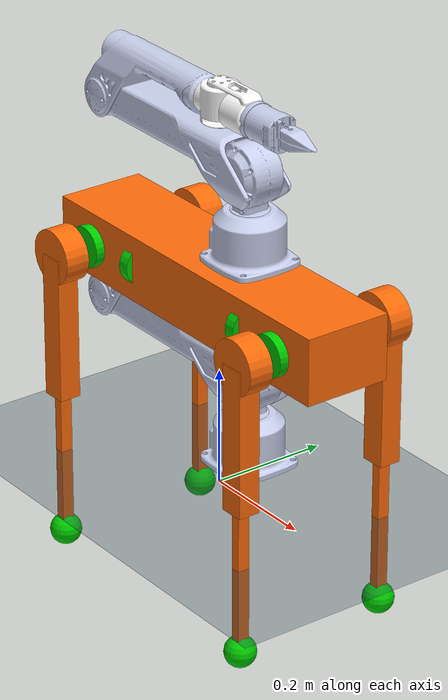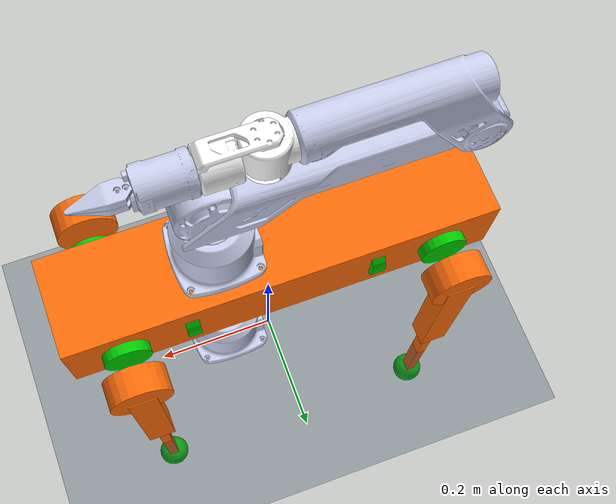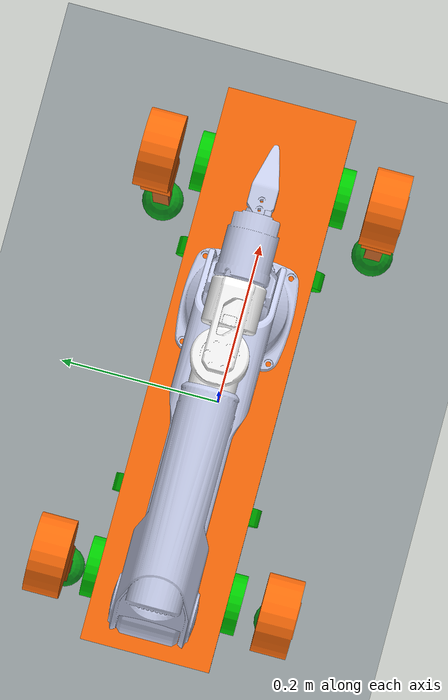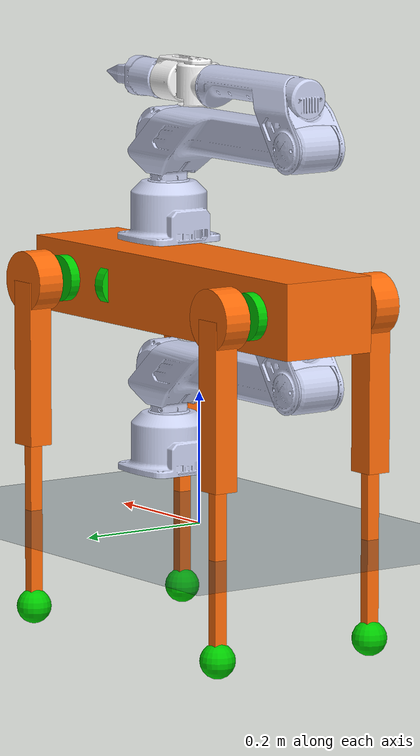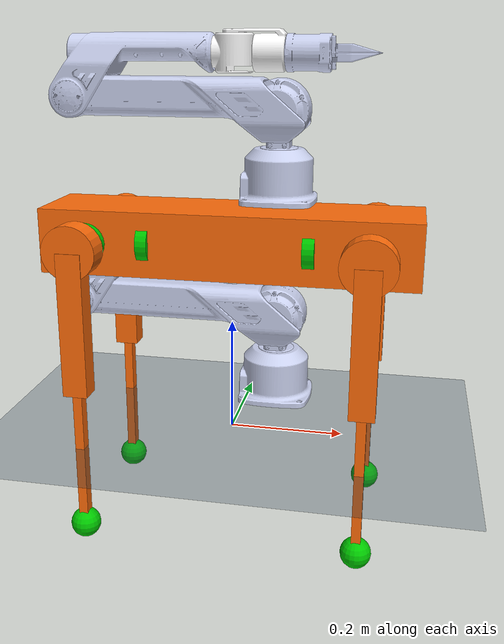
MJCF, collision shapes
<mujoco model="aliengo">
  <compiler angle="radian" meshdir="../meshes/" />

  <option timestep='0.005' iterations='50' solver='PGS' gravity='0 0 -9.81'/>
  <visual>
    <global fovy="60" />
  </visual>

  <default>
      <joint damping="0.05" armature="0.01" frictionloss="0.2"/>
    <default class="visual">
      <geom contype="2" conaffinity="2" mass="0" group='2'/>
    </default>

  </default>

  <asset>
    <mesh name="trunk" file="trunk.stl" />
    <mesh name="hip" file="hip.stl" />
    <mesh name="thigh_mirror" file="thigh_mirror.stl" />
    <mesh name="calf" file="calf.stl" />
    <mesh name="thigh" file="thigh.stl" />
    <texture name="texplane" type="2d" builtin="checker" rgb1=".2 .3 .4" rgb2=".1 0.15 0.2"
        width="512" height="512" mark="cross" markrgb=".8 .8 .8"/>
    <material name="matplane" reflectance="0." texture="texplane" texrepeat="1 1" texuniform="true"/>
    <mesh name="base_link" file="base_link.STL"/>
    <mesh name="arm_seg1" file="arm_seg1.STL"/>
    <mesh name="arm_seg2" file="arm_seg2.STL"/>
    <mesh name="arm_seg3" file="arm_seg3.STL"/>
    <mesh name="arm_seg4" file="arm_seg4.STL"/>
    <mesh name="arm_seg5" file="arm_seg5.STL"/>
    <mesh name="arm_seg6" file="arm_seg6.STL"/>
    <mesh name="gripper1" file="gripper1.STL"/>
    <mesh name="gripper2" file="gripper2.STL"/>
  </asset>

  <worldbody>
    <light directional="true" diffuse=".4 .4 .4" specular="0.1 0.1 0.1" pos="0 0 5.0" dir="0 0 -1"
      castshadow="false" />
    <light directional="true" diffuse=".6 .6 .6" specular="0.2 0.2 0.2" pos="0 0 4" dir="0 0 -1" />
    <geom name="ground" type="plane" size="0 0 1" pos="0.001 0 0" quat="1 0 0 0" material="matplane"
      condim="1" conaffinity='15' />

    <body name="arm_base_shadow" pos="0.08 0 0.07">
    <freejoint/>
    <inertial pos='0 0 0' mass="1.391" diaginertia="0.000708573 0.00058101 0.000445827"/>
    <geom type="mesh" rgba="0.79216 0.81961 0.93333 1" mesh="base_link" class='visual'/>
    <geom type="mesh" rgba="0.79216 0.81961 0.93333 1" mesh="base_link" class='visual'/>
    <body name="arm_seg1_shadow" pos="-0.0011147 0 0.0892" quat="-3.67321e-06 0 0 1">
      <inertial pos="-1.4403e-06 -0.00074041 0.056573" quat="0.707084 0.00122867 -0.00107609 0.707127" mass="1.391" diaginertia="0.000708573 0.00058101 0.000445827"/>
      <joint name="arm_joint1_shadow" pos="0 0 0" axis="0 0 1" range="-2.8798 2.8798" actuatorfrcrange="-40 40"/>
      <geom type="mesh" rgba="0.79216 0.81961 0.93333 1" mesh="arm_seg1" class='visual'/>
      <geom type="mesh" rgba="0.79216 0.81961 0.93333 1" mesh="arm_seg1" class='visual'/>
      <body name="arm_seg2_shadow" pos="0 -4e-05 0.0615" quat="0.707105 0.707108 0 0">
        <inertial pos="0.23622 0.016356 9.154e-05" quat="0.484393 0.48518 0.524693 0.504639" mass="1.3" diaginertia="0.00761886 0.00757469 0.000578276"/>
        <joint name="arm_joint2_shadow" pos="0 0 0" axis="0 0 1" range="0 3.1415" actuatorfrcrange="-40 40"/>
        <geom type="mesh" rgba="0.79216 0.81961 0.93333 1" mesh="arm_seg2" class='visual'/>
        <geom type="mesh" rgba="0.79216 0.81961 0.93333 1" mesh="arm_seg2" class='visual'/>
        <body name="arm_seg3_shadow" pos="0.34928 0.02 0" quat="0.707105 0 0 0.707108">
          <inertial pos="0.054443 0.045347 0.00042807" quat="0.595278 0.471808 -0.522016 0.387995" mass="0.818" diaginertia="0.00149749 0.00144877 0.00053598"/>
          <joint name="arm_joint3_shadow" pos="0 0 0" axis="0 0 1" range="-3.3161 0" actuatorfrcrange="-27 27"/>
          <geom type="mesh" rgba="0.79216 0.81961 0.93333 1" mesh="arm_seg3" class='visual'/>
          <geom type="mesh" rgba="0.79216 0.81961 0.93333 1" mesh="arm_seg3" class='visual'/>
          <body name="arm_seg4_shadow" pos="0.07 -0.00395 -4e-05" quat="0.499998 -0.5 0.5 0.500002">
            <inertial pos="7.6256e-07 -0.0021448 0.27415" quat="0.70651 0.0169198 -0.0168252 0.707301" mass="0.816" diaginertia="0.000101779 9.7042e-05 8.44616e-05"/>
            <joint name="arm_joint4_shadow" pos="0 0 0" axis="0 0 1" range="-2.8798 2.8798" actuatorfrcrange="-7 7"/>
            <geom type="mesh" rgba="1 1 1 1" mesh="arm_seg4" class='visual'/>
            <geom type="mesh" rgba="1 1 1 1" mesh="arm_seg4" class='visual'/>
            <body name="arm_seg5_shadow" pos="0 0 0.2776" quat="-2.59734e-06 2.59735e-06 -0.707108 0.707105">
              <inertial pos="-3.9997e-06 -0.05431 0.0034482" quat="0.477398 0.87868 0.00338218 -0.000840949" mass="0.801" diaginertia="0.00011332 0.000109027 7.34689e-05"/>
              <joint name="arm_joint5_shadow" pos="0 0 0" axis="0 0 1" range="-1.6581 1.6581" actuatorfrcrange="-7 7"/>
              <geom type="mesh" rgba="1 1 1 1" mesh="arm_seg5" class='visual'/>
              <geom type="mesh" rgba="1 1 1 1" mesh="arm_seg5" class='visual'/>
              <body name="arm_seg6_shadow" pos="0 -0.1575 -0.00023266" quat="0.707105 0.707108 0 0">
                <inertial pos="1.93719e-06 -8.51884e-08 -0.0260973" quat="0.998261 9.34938e-07 -3.37378e-05 -0.0589521" mass="0.579" diaginertia="0.00050649 0.000503906 7.9941e-05"/>
                <geom type="mesh" rgba="0.79216 0.81961 0.93333 1" mesh="arm_seg6" class='visual'/>
                <geom type="mesh" rgba="0.79216 0.81961 0.93333 1" mesh="arm_seg6" class='visual'/>
                <geom pos="0.014 -0.011914 0.003125" quat="-0.499979 0.500023 0.499977 0.500021" type="mesh" rgba="0.79216 0.81961 0.93333 1" mesh="gripper1" class='visual'/>
                <geom pos="0.014 -0.011914 0.003125" quat="-0.499979 0.500023 0.499977 0.500021" type="mesh" rgba="0.79216 0.81961 0.93333 1" mesh="gripper1" class='visual'/>
                <geom pos="-0.014 0.011914 0.003125" quat="0.500025 0.499977 -0.500023 0.499975" type="mesh" rgba="0.79216 0.81961 0.93333 1" mesh="gripper2" class='visual'/>
                <geom pos="-0.014 0.011914 0.003125" quat="0.500025 0.499977 -0.500023 0.499975" type="mesh" rgba="0.79216 0.81961 0.93333 1" mesh="gripper2" class='visual'/>
              </body>
            </body>
          </body>
        </body>
      </body>
    </body>
    </body>

    <body name="base" pos="0.0 0.0 0.35">

    <body name="arm_base" pos="0.08 0 0.07">
    <geom type="mesh" contype="0" conaffinity="0" group="1" density="0" rgba="0.79216 0.81961 0.93333 1" mesh="base_link"/>
    <geom type="mesh" rgba="0.79216 0.81961 0.93333 1" mesh="base_link"/>
    <body name="arm_seg1" pos="-0.0011147 0 0.0892" quat="-3.67321e-06 0 0 1">
      <inertial pos="-1.4403e-06 -0.00074041 0.056573" quat="0.707084 0.00122867 -0.00107609 0.707127" mass="1.391" diaginertia="0.000708573 0.00058101 0.000445827"/>
      <joint name="arm_joint1" pos="0 0 0" axis="0 0 1" range="-2.8798 2.8798" actuatorfrcrange="-40 40"/>
      <geom type="mesh" contype="0" conaffinity="0" group="1" density="0" rgba="0.79216 0.81961 0.93333 1" mesh="arm_seg1"/>
      <geom type="mesh" rgba="0.79216 0.81961 0.93333 1" mesh="arm_seg1"/>
      <body name="arm_seg2" pos="0 -4e-05 0.0615" quat="0.707105 0.707108 0 0">
        <inertial pos="0.23622 0.016356 9.154e-05" quat="0.484393 0.48518 0.524693 0.504639" mass="1.3" diaginertia="0.00761886 0.00757469 0.000578276"/>
        <joint name="arm_joint2" pos="0 0 0" axis="0 0 1" range="0 3.1415" actuatorfrcrange="-40 40"/>
        <geom type="mesh" contype="0" conaffinity="0" group="1" density="0" rgba="0.79216 0.81961 0.93333 1" mesh="arm_seg2"/>
        <geom type="mesh" rgba="0.79216 0.81961 0.93333 1" mesh="arm_seg2"/>
        <body name="arm_seg3" pos="0.34928 0.02 0" quat="0.707105 0 0 0.707108">
          <inertial pos="0.054443 0.045347 0.00042807" quat="0.595278 0.471808 -0.522016 0.387995" mass="0.818" diaginertia="0.00149749 0.00144877 0.00053598"/>
          <joint name="arm_joint3" pos="0 0 0" axis="0 0 1" range="-3.3161 0" actuatorfrcrange="-27 27"/>
          <geom type="mesh" contype="0" conaffinity="0" group="1" density="0" rgba="0.79216 0.81961 0.93333 1" mesh="arm_seg3"/>
          <geom type="mesh" rgba="0.79216 0.81961 0.93333 1" mesh="arm_seg3"/>
          <body name="arm_seg4" pos="0.07 -0.00395 -4e-05" quat="0.499998 -0.5 0.5 0.500002">
            <inertial pos="7.6256e-07 -0.0021448 0.27415" quat="0.70651 0.0169198 -0.0168252 0.707301" mass="0.816" diaginertia="0.000101779 9.7042e-05 8.44616e-05"/>
            <joint name="arm_joint4" pos="0 0 0" axis="0 0 1" range="-2.8798 2.8798" actuatorfrcrange="-7 7"/>
            <geom type="mesh" contype="0" conaffinity="0" group="1" density="0" rgba="1 1 1 1" mesh="arm_seg4"/>
            <geom type="mesh" rgba="1 1 1 1" mesh="arm_seg4"/>
            <body name="arm_seg5" pos="0 0 0.2776" quat="-2.59734e-06 2.59735e-06 -0.707108 0.707105">
              <inertial pos="-3.9997e-06 -0.05431 0.0034482" quat="0.477398 0.87868 0.00338218 -0.000840949" mass="0.801" diaginertia="0.00011332 0.000109027 7.34689e-05"/>
              <joint name="arm_joint5" pos="0 0 0" axis="0 0 1" range="-1.6581 1.6581" actuatorfrcrange="-7 7"/>
              <geom type="mesh" contype="0" conaffinity="0" group="1" density="0" rgba="1 1 1 1" mesh="arm_seg5"/>
              <geom type="mesh" rgba="1 1 1 1" mesh="arm_seg5"/>
              <body name="arm_seg6" pos="0 -0.1575 -0.00023266" quat="0.707105 0.707108 0 0">
                <inertial pos="1.93719e-06 -8.51884e-08 -0.0260973" quat="0.998261 9.34938e-07 -3.37378e-05 -0.0589521" mass="0.579" diaginertia="0.00050649 0.000503906 7.9941e-05"/>
                <geom type="mesh" contype="0" conaffinity="0" group="1" density="0" rgba="0.79216 0.81961 0.93333 1" mesh="arm_seg6"/>
                <geom type="mesh" rgba="0.79216 0.81961 0.93333 1" mesh="arm_seg6"/>
                <geom pos="0.014 -0.011914 0.003125" quat="-0.499979 0.500023 0.499977 0.500021" type="mesh" contype="0" conaffinity="0" group="1" density="0" rgba="0.79216 0.81961 0.93333 1" mesh="gripper1"/>
                <geom pos="0.014 -0.011914 0.003125" quat="-0.499979 0.500023 0.499977 0.500021" type="mesh" rgba="0.79216 0.81961 0.93333 1" mesh="gripper1"/>
                <geom pos="-0.014 0.011914 0.003125" quat="0.500025 0.499977 -0.500023 0.499975" type="mesh" contype="0" conaffinity="0" group="1" density="0" rgba="0.79216 0.81961 0.93333 1" mesh="gripper2"/>
                <geom pos="-0.014 0.011914 0.003125" quat="0.500025 0.499977 -0.500023 0.499975" type="mesh" rgba="0.79216 0.81961 0.93333 1" mesh="gripper2"/>
              </body>
            </body>
          </body>
        </body>
      </body>
    </body>
    </body>

      <geom type="mesh" contype="0" conaffinity="0" group="1" density="0"
        rgba="1 0.423529 0.0392157 1" mesh="trunk" />

      <inertial pos="0.008811 0.003839 0.000273" mass="11.644" diaginertia="0.051944892 0.24693924 0.270948307" />
      <joint type='slide' axis='1 0 0' limited='false' />
      <joint type='slide' axis='0 1 0' limited='false' />
      <joint type='slide' axis='0 0 1' limited='false' />
      <joint type='ball' limited='false' />
      <site name='imu' size='0.01' pos='0.0 0 0.0'/>

      <geom size="0.0005 0.0005 0.0005" type="box" contype="0" conaffinity="0" group="1" density="0" />
      <geom size="0.3235 0.075 0.056" type="box" rgba="1 0.423529 0.0392157 1" />
      <geom size="0.0005 0.0005 0.0005" type="box" contype="0" conaffinity="0" group="1" density="0"
        rgba="0.8 0 0 1" />
      <geom size="0.0005 0.0005 0.0005" type="box" rgba="0.8 0 0 1" />
      <geom size="0.035 0.01" pos="0.139985 -0.051 0" quat="0.707107 0 0.707107 0" type="cylinder"
        contype="0" conaffinity="0" group="1" density="0" rgba="0 0.8 0 1" />
      <geom size="0.035 0.01" pos="0.139985 -0.051 0" quat="0.707107 0 0.707107 0" type="cylinder"
        rgba="0 0.8 0 1" />
      <geom size="0.035 0.01" pos="0.139985 0.051 0" quat="0.707107 0 0.707107 0" type="cylinder"
        contype="0" conaffinity="0" group="1" density="0" rgba="0 0.8 0 1" />
      <geom size="0.035 0.01" pos="0.139985 0.051 0" quat="0.707107 0 0.707107 0" type="cylinder"
        rgba="0 0.8 0 1" />
      <geom size="0.035 0.01" pos="-0.139985 -0.051 0" quat="0.707107 0 0.707107 0" type="cylinder"
        contype="0" conaffinity="0" group="1" density="0" rgba="0 0.8 0 1" />
      <geom size="0.035 0.01" pos="-0.139985 -0.051 0" quat="0.707107 0 0.707107 0" type="cylinder"
        rgba="0 0.8 0 1" />
      <geom size="0.035 0.01" pos="-0.139985 0.051 0" quat="0.707107 0 0.707107 0" type="cylinder"
        contype="0" conaffinity="0" group="1" density="0" rgba="0 0.8 0 1" />
      <geom size="0.035 0.01" pos="-0.139985 0.051 0" quat="0.707107 0 0.707107 0" type="cylinder"
        rgba="0 0.8 0 1" />
      <body name="FR_hip" pos="0.2407 -0.051 0">
        <inertial pos="-0.0206763 -0.0161444 -1.39762e-05" quat="0.58092 0.574831 0.412459 0.402465"
          mass="2.139" diaginertia="0.0043606 0.0043277 0.00233028" />
        <joint name="FR_hip_joint" pos="0 0 0" axis="1 0 0" range="-1.22173 1.22173"
          actuatorfrcrange="-35.278 35.278" />
        <geom quat="0 1 0 0" type="mesh" contype="0" conaffinity="0" group="1" density="0"
          rgba="1 0.423529 0.0392157 1" mesh="hip" />
        <geom size="0.046 0.0209" pos="0 -0.083 0" quat="0.707107 0.707107 0 0" type="cylinder"
          rgba="1 0.423529 0.0392157 1" />
        <geom size="0.035 0.01" pos="0 -0.0298 0" quat="0.707107 0.707107 0 0" type="cylinder"
          contype="0" conaffinity="0" group="1" density="0" rgba="0 0.8 0 1" />
        <geom size="0.035 0.01" pos="0 -0.0298 0" quat="0.707107 0.707107 0 0" type="cylinder"
          rgba="0 0.8 0 1" />
        <body name="FR_thigh" pos="0 -0.0868 0">
          <inertial pos="-0.00464705 0.0202825 -0.039947"
            quat="0.994998 -0.0906147 0.0414285 -0.0071304" mass="0.771"
            diaginertia="0.00560787 0.004847 0.00135111" />
          <joint name="FR_thigh_joint" pos="0 0 0" axis="0 1 0" actuatorfrcrange="-35.278 35.278" />
          <geom type="mesh" contype="0" conaffinity="0" group="1" density="0"
            rgba="1 0.423529 0.0392157 1" mesh="thigh_mirror" />
          <geom size="0.125 0.0187 0.0215" pos="0 0 -0.125" quat="0.707107 0 0.707107 0" type="box"
            rgba="1 0.423529 0.0392157 1" />
          <body name="FR_calf" pos="0 0 -0.25">
            <inertial pos="0.00215606 4.88427e-05 -0.166671"
              quat="0.708049 0.000982931 0.00120829 0.706161" mass="0.267"
              diaginertia="0.00269606 0.00268354 5.47714e-05" />
            <joint name="FR_calf_joint" pos="0 0 0" axis="0 1 0" range="-2.77507 -0.645772"
              actuatorfrcrange="-44.4 44.4" />
            <geom type="mesh" contype="0" conaffinity="0" group="1" density="0"
              rgba="1 0.423529 0.0392157 1" mesh="calf" />
            <geom size="0.125 0.0104 0.008" pos="0 0 -0.125" quat="0.707107 0 0.707107 0" type="box"
              rgba="1 0.423529 0.0392157 1" />
            <geom size="0.0165" pos="0 0 -0.25" contype="0" conaffinity="0" group="1" density="0"
              rgba="0 0.8 0 1" />
            <geom size="0.0265" pos="0 0 -0.25" rgba="0 0.8 0 1" />
          </body>
        </body>
      </body>
      <body name="FL_hip" pos="0.2407 0.051 0">
        <inertial pos="-0.0206763 0.0161444 -1.39762e-05" quat="0.402465 0.412459 0.574831 0.58092"
          mass="2.139" diaginertia="0.0043606 0.0043277 0.00233028" />
        <joint name="FL_hip_joint" pos="0 0 0" axis="1 0 0" range="-1.22173 1.22173"
          actuatorfrcrange="-35.278 35.278" />
        <geom type="mesh" contype="0" conaffinity="0" group="1" density="0"
          rgba="1 0.423529 0.0392157 1" mesh="hip" />
        <geom size="0.046 0.0209" pos="0 0.083 0" quat="0.707107 0.707107 0 0" type="cylinder"
          rgba="1 0.423529 0.0392157 1" />
        <geom size="0.035 0.01" pos="0 0.0298 0" quat="0.707107 0.707107 0 0" type="cylinder"
          contype="0" conaffinity="0" group="1" density="0" rgba="0 0.8 0 1" />
        <geom size="0.035 0.01" pos="0 0.0298 0" quat="0.707107 0.707107 0 0" type="cylinder"
          rgba="0 0.8 0 1" />
        <body name="FL_thigh" pos="0 0.0868 0">
          <inertial pos="-0.00464705 -0.0202825 -0.039947"
            quat="0.994998 0.0906147 0.0414285 0.0071304" mass="0.771"
            diaginertia="0.00560787 0.004847 0.00135111" />
          <joint name="FL_thigh_joint" pos="0 0 0" axis="0 1 0" actuatorfrcrange="-35.278 35.278" />
          <geom type="mesh" contype="0" conaffinity="0" group="1" density="0"
            rgba="1 0.423529 0.0392157 1" mesh="thigh" />
          <geom size="0.125 0.0187 0.0215" pos="0 0 -0.125" quat="0.707107 0 0.707107 0" type="box"
            rgba="1 0.423529 0.0392157 1" />
          <body name="FL_calf" pos="0 0 -0.25">
            <inertial pos="0.00215606 4.88427e-05 -0.166671"
              quat="0.708049 0.000982931 0.00120829 0.706161" mass="0.267"
              diaginertia="0.00269606 0.00268354 5.47714e-05" />
            <joint name="FL_calf_joint" pos="0 0 0" axis="0 1 0" range="-2.77507 -0.645772"
              actuatorfrcrange="-44.4 44.4" />
            <geom type="mesh" contype="0" conaffinity="0" group="1" density="0"
              rgba="1 0.423529 0.0392157 1" mesh="calf" />
            <geom size="0.125 0.0104 0.008" pos="0 0 -0.125" quat="0.707107 0 0.707107 0" type="box"
              rgba="1 0.423529 0.0392157 1" />
            <geom size="0.0165" pos="0 0 -0.25" contype="0" conaffinity="0" group="1" density="0"
              rgba="0 0.8 0 1" />
            <geom size="0.0265" pos="0 0 -0.25" rgba="0 0.8 0 1" />
          </body>
        </body>
      </body>
      <body name="RR_hip" pos="-0.2407 -0.051 0">
        <inertial pos="0.0206763 -0.0161444 -1.39762e-05" quat="0.412459 0.402465 0.58092 0.574831"
          mass="2.139" diaginertia="0.0043606 0.0043277 0.00233028" />
        <joint name="RR_hip_joint" pos="0 0 0" axis="1 0 0" range="-1.22173 1.22173"
          actuatorfrcrange="-35.278 35.278" />
        <geom quat="0 0 0 -1" type="mesh" contype="0" conaffinity="0" group="1" density="0"
          rgba="1 0.423529 0.0392157 1" mesh="hip" />
        <geom size="0.046 0.0209" pos="0 -0.083 0" quat="0.707107 0.707107 0 0" type="cylinder"
          rgba="1 0.423529 0.0392157 1" />
        <geom size="0.035 0.01" pos="0 -0.0298 0" quat="0.707107 0.707107 0 0" type="cylinder"
          contype="0" conaffinity="0" group="1" density="0" rgba="0 0.8 0 1" />
        <geom size="0.035 0.01" pos="0 -0.0298 0" quat="0.707107 0.707107 0 0" type="cylinder"
          rgba="0 0.8 0 1" />
        <body name="RR_thigh" pos="0 -0.0868 0">
          <inertial pos="-0.00464705 0.0202825 -0.039947"
            quat="0.994998 -0.0906147 0.0414285 -0.0071304" mass="0.771"
            diaginertia="0.00560787 0.004847 0.00135111" />
          <joint name="RR_thigh_joint" pos="0 0 0" axis="0 1 0" actuatorfrcrange="-35.278 35.278" />
          <geom type="mesh" contype="0" conaffinity="0" group="1" density="0"
            rgba="1 0.423529 0.0392157 1" mesh="thigh_mirror" />
          <geom size="0.125 0.0187 0.0215" pos="0 0 -0.125" quat="0.707107 0 0.707107 0" type="box"
            rgba="1 0.423529 0.0392157 1" />
          <body name="RR_calf" pos="0 0 -0.25">
            <inertial pos="0.00215606 4.88427e-05 -0.166671"
              quat="0.708049 0.000982931 0.00120829 0.706161" mass="0.267"
              diaginertia="0.00269606 0.00268354 5.47714e-05" />
            <joint name="RR_calf_joint" pos="0 0 0" axis="0 1 0" range="-2.77507 -0.645772"
              actuatorfrcrange="-44.4 44.4" />
            <geom type="mesh" contype="0" conaffinity="0" group="1" density="0"
              rgba="1 0.423529 0.0392157 1" mesh="calf" />
            <geom size="0.125 0.0104 0.008" pos="0 0 -0.125" quat="0.707107 0 0.707107 0" type="box"
              rgba="1 0.423529 0.0392157 1" />
            <geom size="0.0165" pos="0 0 -0.25" contype="0" conaffinity="0" group="1" density="0"
              rgba="0 0.8 0 1" />
            <geom size="0.0265" pos="0 0 -0.25" rgba="0 0.8 0 1" />
          </body>
        </body>
      </body>
      <body name="RL_hip" pos="-0.2407 0.051 0">
        <inertial pos="0.0206763 0.0161444 -1.39762e-05" quat="0.574831 0.58092 0.402465 0.412459"
          mass="2.139" diaginertia="0.0043606 0.0043277 0.00233028" />
        <joint name="RL_hip_joint" pos="0 0 0" axis="1 0 0" range="-1.22173 1.22173"
          actuatorfrcrange="-35.278 35.278" />
        <geom quat="0 0 1 0" type="mesh" contype="0" conaffinity="0" group="1" density="0"
          rgba="1 0.423529 0.0392157 1" mesh="hip" />
        <geom size="0.046 0.0209" pos="0 0.083 0" quat="0.707107 0.707107 0 0" type="cylinder"
          rgba="1 0.423529 0.0392157 1" />
        <geom size="0.035 0.01" pos="0 0.0298 0" quat="0.707107 0.707107 0 0" type="cylinder"
          contype="0" conaffinity="0" group="1" density="0" rgba="0 0.8 0 1" />
        <geom size="0.035 0.01" pos="0 0.0298 0" quat="0.707107 0.707107 0 0" type="cylinder"
          rgba="0 0.8 0 1" />
        <body name="RL_thigh" pos="0 0.0868 0">
          <inertial pos="-0.00464705 -0.0202825 -0.039947"
            quat="0.994998 0.0906147 0.0414285 0.0071304" mass="0.771"
            diaginertia="0.00560787 0.004847 0.00135111" />
          <joint name="RL_thigh_joint" pos="0 0 0" axis="0 1 0" actuatorfrcrange="-35.278 35.278" />
          <geom type="mesh" contype="0" conaffinity="0" group="1" density="0"
            rgba="1 0.423529 0.0392157 1" mesh="thigh" />
          <geom size="0.125 0.0187 0.0215" pos="0 0 -0.125" quat="0.707107 0 0.707107 0" type="box"
            rgba="1 0.423529 0.0392157 1" />
          <body name="RL_calf" pos="0 0 -0.25">
            <inertial pos="0.00215606 4.88427e-05 -0.166671"
              quat="0.708049 0.000982931 0.00120829 0.706161" mass="0.267"
              diaginertia="0.00269606 0.00268354 5.47714e-05" />
            <joint name="RL_calf_joint" pos="0 0 0" axis="0 1 0" range="-2.77507 -0.645772"
              actuatorfrcrange="-44.4 44.4" />
            <geom type="mesh" contype="0" conaffinity="0" group="1" density="0"
              rgba="1 0.423529 0.0392157 1" mesh="calf" />
            <geom size="0.125 0.0104 0.008" pos="0 0 -0.125" quat="0.707107 0 0.707107 0" type="box"
              rgba="1 0.423529 0.0392157 1" />
            <geom size="0.0165" pos="0 0 -0.25" contype="0" conaffinity="0" group="1" density="0"
              rgba="0 0.8 0 1" />
            <geom size="0.0265" pos="0 0 -0.25" rgba="0 0.8 0 1" />
          </body>
        </body>
      </body>

    </body>
  </worldbody>
  <actuator>
    <!-- Front Right Leg (FR) -->
    <motor name="FR_hip_joint" joint="FR_hip_joint" gear="1" ctrllimited="true" ctrlrange="-200 200" />
    <motor name="FR_thigh_joint" joint="FR_thigh_joint" gear="1" ctrllimited="true"
      ctrlrange="-200 200" />
    <motor name="FR_calf_joint" joint="FR_calf_joint" gear="1" ctrllimited="true"
      ctrlrange="-200 200" />

    <!-- Front Left Leg (FL) -->
    <motor name="FL_hip_joint" joint="FL_hip_joint" gear="1" ctrllimited="true" ctrlrange="-200 200" />
    <motor name="FL_thigh_joint" joint="FL_thigh_joint" gear="1" ctrllimited="true"
      ctrlrange="-200 200" />
    <motor name="FL_calf_joint" joint="FL_calf_joint" gear="1" ctrllimited="true"
      ctrlrange="-200 200" />

    <!-- Rear Right Leg (RR) -->
    <motor name="RR_hip_joint" joint="RR_hip_joint" gear="1" ctrllimited="true" ctrlrange="-200 200" />
    <motor name="RR_thigh_joint" joint="RR_thigh_joint" gear="1" ctrllimited="true"
      ctrlrange="-200 200" />
    <motor name="RR_calf_joint" joint="RR_calf_joint" gear="1" ctrllimited="true"
      ctrlrange="-200 200" />

    <!-- Rear Left Leg (RL) -->
    <motor name="RL_hip_joint" joint="RL_hip_joint" gear="1" ctrllimited="true" ctrlrange="-200 200" />
    <motor name="RL_thigh_joint" joint="RL_thigh_joint" gear="1" ctrllimited="true"
      ctrlrange="-200 200" />
    <motor name="RL_calf_joint" joint="RL_calf_joint" gear="1" ctrllimited="true"
      ctrlrange="-200 200" />

      <!-- Arm -->
      <motor name="arm_joint1" joint="arm_joint1" gear="1" ctrllimited="true" ctrlrange="-200 200" />
      <motor name="arm_joint2" joint="arm_joint2" gear="1" ctrllimited="true" ctrlrange="-200 200" />
      <motor name="arm_joint3" joint="arm_joint3" gear="1" ctrllimited="true" ctrlrange="-200 200" />
      <motor name="arm_joint4" joint="arm_joint4" gear="1" ctrllimited="true" ctrlrange="-200 200" />
      <motor name="arm_joint5" joint="arm_joint5" gear="1" ctrllimited="true" ctrlrange="-200 200" />
  </actuator>

  <sensor>
    <framequat name='orientation' objtype='site' objname='imu' />
  </sensor>
</mujoco>
